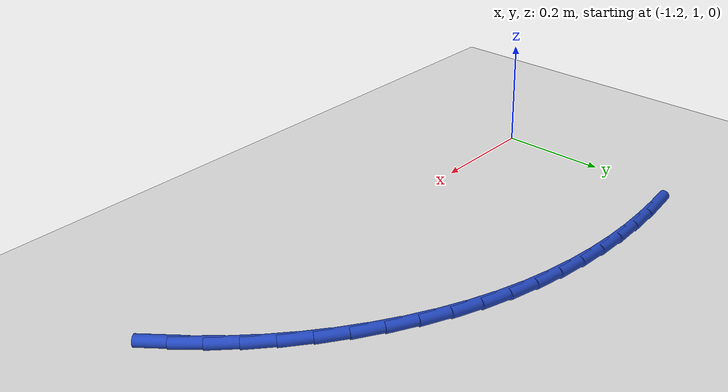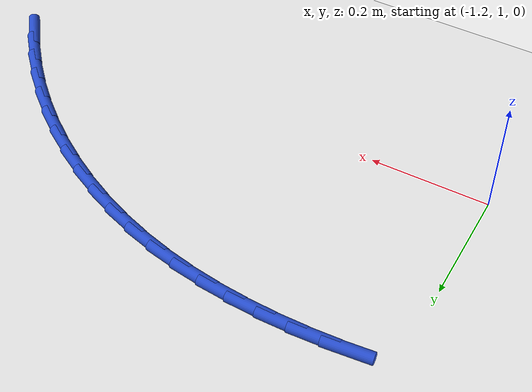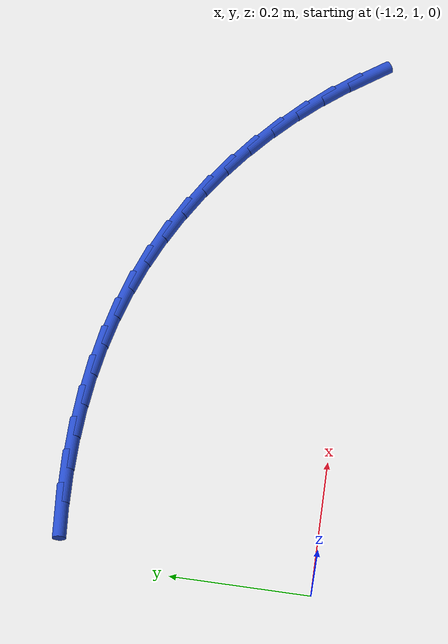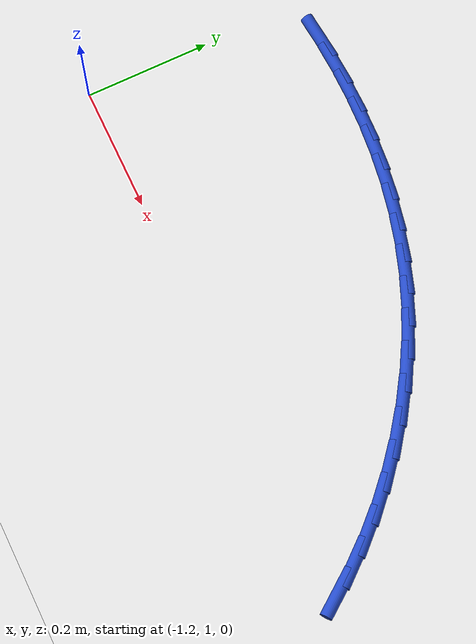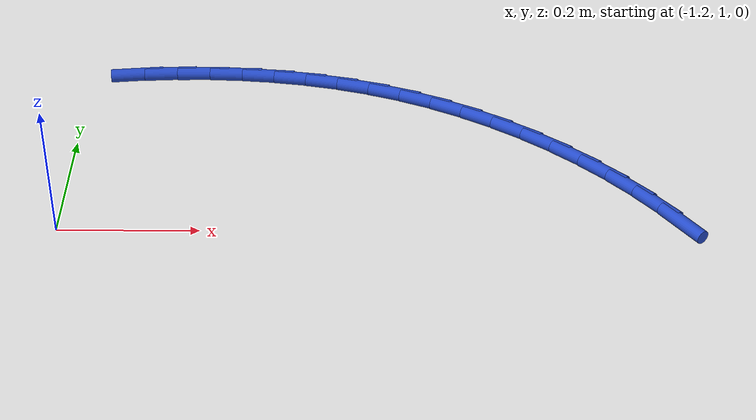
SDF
<sdf version="1.6">
 <world name="default">
  <model name="ground_plane">
   <static>1</static>
   <link name="link">
    <collision name="collision">
     <geometry><plane><normal>0 0 1</normal><size>100 100</size></plane></geometry>
     <surface><friction><ode><mu>100</mu><mu2>50</mu2></ode></friction></surface>
    </collision>
    <visual name="visual">
     <cast_shadows>0</cast_shadows>
     <geometry><plane><normal>0 0 1</normal><size>100 100</size></plane></geometry>
     <material>
      <script><uri>file://media/materials/scripts/gazebo.material</uri><name>Gazebo/WhiteGlow</name></script>
     </material>
    </visual>
   </link>
  </model>
  <model name="line">
   <link name="link_21">
    <pose>-0.32955880344803073 1.0128500450345275 0.01 0 1.57 -0.9230771065466133</pose>
    <collision name="collision">
     <geometry><cylinder><radius>0.01</radius><length>0.08</length></cylinder></geometry>
    </collision>
    <visual name="visual">
     <material>
      <script><name>Gazebo/Blue</name><uri>file://media/materials/scripts/gazebo.material</uri></script>
     </material>
     <geometry><cylinder><radius>0.01</radius><length>0.08</length></cylinder></geometry>
    </visual>
   </link>
   <link name="link_22">
    <pose>-0.3600353412526427 1.0531303309210187 0.01 0 1.57 -0.8611142817440818</pose>
    <collision name="collision">
     <geometry><cylinder><radius>0.01</radius><length>0.08</length></cylinder></geometry>
    </collision>
    <visual name="visual">
     <material>
      <script><name>Gazebo/Blue</name><uri>file://media/materials/scripts/gazebo.material</uri></script>
     </material>
     <geometry><cylinder><radius>0.01</radius><length>0.08</length></cylinder></geometry>
    </visual>
   </link>
   <link name="link_23">
    <pose>-0.39318225416189273 1.0917192024047568 0.01 0 1.57 -0.799620497931112</pose>
    <collision name="collision">
     <geometry><cylinder><radius>0.01</radius><length>0.08</length></cylinder></geometry>
    </collision>
    <visual name="visual">
     <material>
      <script><name>Gazebo/Blue</name><uri>file://media/materials/scripts/gazebo.material</uri></script>
     </material>
     <geometry><cylinder><radius>0.01</radius><length>0.08</length></cylinder></geometry>
    </visual>
   </link>
   <link name="link_24">
    <pose>-0.42888500808327906 1.1284522317349424 0.01 0 1.57 -0.7396883813663929</pose>
    <collision name="collision">
     <geometry><cylinder><radius>0.01</radius><length>0.08</length></cylinder></geometry>
    </collision>
    <visual name="visual">
     <material>
      <script><name>Gazebo/Blue</name><uri>file://media/materials/scripts/gazebo.material</uri></script>
     </material>
     <geometry><cylinder><radius>0.01</radius><length>0.08</length></cylinder></geometry>
    </visual>
   </link>
   <link name="link_25">
    <pose>-0.46691464316998177 1.163154968575266 0.01 0 1.57 -0.6807321209874171</pose>
    <collision name="collision">
     <geometry><cylinder><radius>0.01</radius><length>0.08</length></cylinder></geometry>
    </collision>
    <visual name="visual">
     <material>
      <script><name>Gazebo/Blue</name><uri>file://media/materials/scripts/gazebo.material</uri></script>
     </material>
     <geometry><cylinder><radius>0.01</radius><length>0.08</length></cylinder></geometry>
    </visual>
   </link>
   <link name="link_26">
    <pose>-0.5070418820450693 1.1956529347768614 0.01 0 1.57 -0.6221686634510214</pose>
    <collision name="collision">
     <geometry><cylinder><radius>0.01</radius><length>0.08</length></cylinder></geometry>
    </collision>
    <visual name="visual">
     <material>
      <script><name>Gazebo/Blue</name><uri>file://media/materials/scripts/gazebo.material</uri></script>
     </material>
     <geometry><cylinder><radius>0.01</radius><length>0.08</length></cylinder></geometry>
    </visual>
   </link>
   <link name="link_27">
    <pose>-0.5490374473316119 1.225771652190864 0.01 0 1.57 -0.5634192476552503</pose>
    <collision name="collision">
     <geometry><cylinder><radius>0.01</radius><length>0.08</length></cylinder></geometry>
    </collision>
    <visual name="visual">
     <material>
      <script><name>Gazebo/Blue</name><uri>file://media/materials/scripts/gazebo.material</uri></script>
     </material>
     <geometry><cylinder><radius>0.01</radius><length>0.08</length></cylinder></geometry>
    </visual>
   </link>
   <link name="link_28">
    <pose>-0.5926720616526775 1.2533366426684072 0.01 0 1.57 -0.5039057011146612</pose>
    <collision name="collision">
     <geometry><cylinder><radius>0.01</radius><length>0.08</length></cylinder></geometry>
    </collision>
    <visual name="visual">
     <material>
      <script><name>Gazebo/Blue</name><uri>file://media/materials/scripts/gazebo.material</uri></script>
     </material>
     <geometry><cylinder><radius>0.01</radius><length>0.08</length></cylinder></geometry>
    </visual>
   </link>
   <link name="link_29">
    <pose>-0.6377164476313361 1.2781734280606258 0.01 0 1.57 -0.44304730307370715</pose>
    <collision name="collision">
     <geometry><cylinder><radius>0.01</radius><length>0.08</length></cylinder></geometry>
    </collision>
    <visual name="visual">
     <material>
      <script><name>Gazebo/Blue</name><uri>file://media/materials/scripts/gazebo.material</uri></script>
     </material>
     <geometry><cylinder><radius>0.01</radius><length>0.08</length></cylinder></geometry>
    </visual>
   </link>
   <link name="link_30">
    <pose>-0.6839413278906561 1.300107530218654 0.01 0 1.57 -0.38026335017406027</pose>
    <collision name="collision">
     <geometry><cylinder><radius>0.01</radius><length>0.08</length></cylinder></geometry>
    </collision>
    <visual name="visual">
     <material>
      <script><name>Gazebo/Blue</name><uri>file://media/materials/scripts/gazebo.material</uri></script>
     </material>
     <geometry><cylinder><radius>0.01</radius><length>0.08</length></cylinder></geometry>
    </visual>
   </link>
   <link name="link_31">
    <pose>-0.7311175666902411 1.31896472751858 0.01 0 1.57 -0.3162058836869966</pose>
    <collision name="collision">
     <geometry><cylinder><radius>0.01</radius><length>0.08</length></cylinder></geometry>
    </collision>
    <visual name="visual">
     <material>
      <script><name>Gazebo/Blue</name><uri>file://media/materials/scripts/gazebo.material</uri></script>
     </material>
     <geometry><cylinder><radius>0.01</radius><length>0.08</length></cylinder></geometry>
    </visual>
   </link>
   <link name="link_32">
    <pose>-0.7790601898240487 1.3346507814823638 0.01 0 1.57 -0.2537855068221282</pose>
    <collision name="collision">
     <geometry><cylinder><radius>0.01</radius><length>0.08</length></cylinder></geometry>
    </collision>
    <visual name="visual">
     <material>
      <script><name>Gazebo/Blue</name><uri>file://media/materials/scripts/gazebo.material</uri></script>
     </material>
     <geometry><cylinder><radius>0.01</radius><length>0.08</length></cylinder></geometry>
    </visual>
   </link>
   <link name="link_33">
    <pose>-0.8276908124971861 1.3472645030027541 0.01 0 1.57 -0.19383127458707317</pose>
    <collision name="collision">
     <geometry><cylinder><radius>0.01</radius><length>0.08</length></cylinder></geometry>
    </collision>
    <visual name="visual">
     <material>
      <script><name>Gazebo/Blue</name><uri>file://media/materials/scripts/gazebo.material</uri></script>
     </material>
     <geometry><cylinder><radius>0.01</radius><length>0.08</length></cylinder></geometry>
    </visual>
   </link>
   <link name="link_34">
    <pose>-0.8769468100171041 1.356933246875766 0.01 0 1.57 -0.1366637141161315</pose>
    <collision name="collision">
     <geometry><cylinder><radius>0.01</radius><length>0.08</length></cylinder></geometry>
    </collision>
    <visual name="visual">
     <material>
      <script><name>Gazebo/Blue</name><uri>file://media/materials/scripts/gazebo.material</uri></script>
     </material>
     <geometry><cylinder><radius>0.01</radius><length>0.08</length></cylinder></geometry>
    </visual>
   </link>
   <link name="link_35">
    <pose>-0.9267655576912519 1.3637843678974135 0.01 0 1.57 -0.08250201217486275</pose>
    <collision name="collision">
     <geometry><cylinder><radius>0.01</radius><length>0.08</length></cylinder></geometry>
    </collision>
    <visual name="visual">
     <material>
      <script><name>Gazebo/Blue</name><uri>file://media/materials/scripts/gazebo.material</uri></script>
     </material>
     <geometry><cylinder><radius>0.01</radius><length>0.08</length></cylinder></geometry>
    </visual>
   </link>
   <link name="link_36">
    <pose>-0.9770844308270807 1.3679452208637113 0.01 0 1.57 -0.031472147533216595</pose>
    <collision name="collision">
     <geometry><cylinder><radius>0.01</radius><length>0.08</length></cylinder></geometry>
    </collision>
    <visual name="visual">
     <material>
      <script><name>Gazebo/Blue</name><uri>file://media/materials/scripts/gazebo.material</uri></script>
     </material>
     <geometry><cylinder><radius>0.01</radius><length>0.08</length></cylinder></geometry>
    </visual>
   </link>
   <link name="link_37">
    <pose>-1.0278408047320402 1.369543160570674 0.01 0 1.57 0.016380273131531314</pose>
    <collision name="collision">
     <geometry><cylinder><radius>0.01</radius><length>0.08</length></cylinder></geometry>
    </collision>
    <visual name="visual">
     <material>
      <script><name>Gazebo/Blue</name><uri>file://media/materials/scripts/gazebo.material</uri></script>
     </material>
     <geometry><cylinder><radius>0.01</radius><length>0.08</length></cylinder></geometry>
    </visual>
   </link>
   <link name="link_38">
    <pose>-1.078972054713581 1.3687055418143155 0.01 0 1.57 0.06107496384941317</pose>
    <collision name="collision">
     <geometry><cylinder><radius>0.01</radius><length>0.08</length></cylinder></geometry>
    </collision>
    <visual name="visual">
     <material>
      <script><name>Gazebo/Blue</name><uri>file://media/materials/scripts/gazebo.material</uri></script>
     </material>
     <geometry><cylinder><radius>0.01</radius><length>0.08</length></cylinder></geometry>
    </visual>
   </link>
   <link name="link_39">
    <pose>-1.1304155560791531 1.3655597193906508 0.01 0 1.57 0.10268168489215396</pose>
    <collision name="collision">
     <geometry><cylinder><radius>0.01</radius><length>0.08</length></cylinder></geometry>
    </collision>
    <visual name="visual">
     <material>
      <script><name>Gazebo/Blue</name><uri>file://media/materials/scripts/gazebo.material</uri></script>
     </material>
     <geometry><cylinder><radius>0.01</radius><length>0.08</length></cylinder></geometry>
    </visual>
   </link>
  </model>
 </world>
</sdf>
